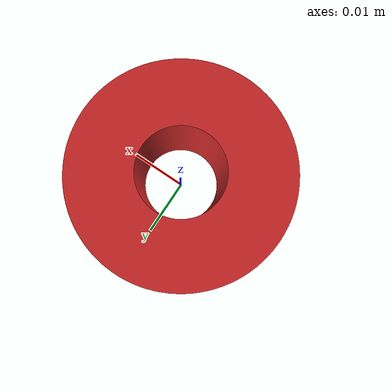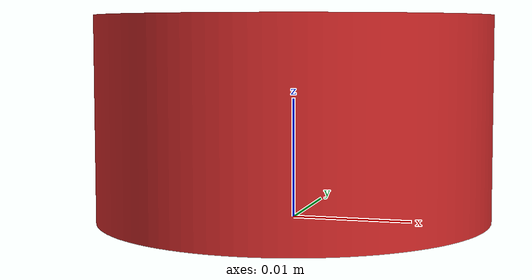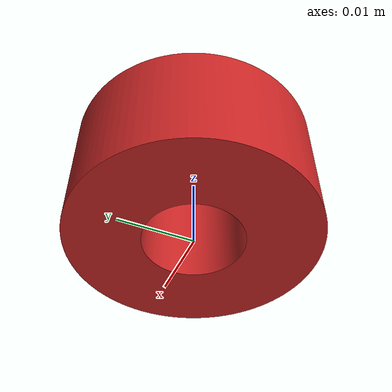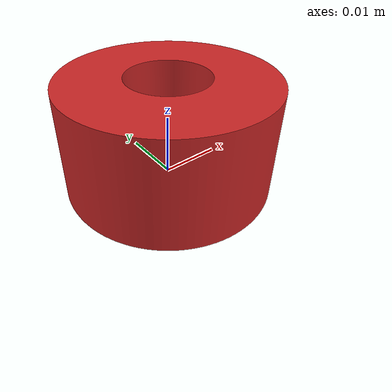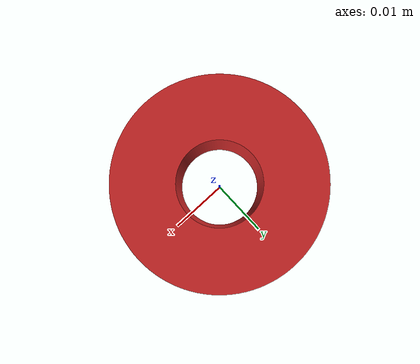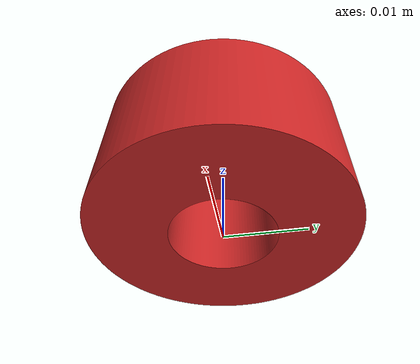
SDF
<sdf version='1.6'>
  <model name='hanoi_tower_d300'>
    <link name='token_d300_link'>
      <pose frame=''>0 0 0 0 -0 0</pose>
      <inertial>
        <pose frame=''>0 0 0.0085 0 -0 0</pose>
        <mass>0.45</mass>
        <inertia>
          <ixx>4.74e-05</ixx>
          <ixy>0</ixy>
          <ixz>0</ixz>
          <iyy>4.74e-05</iyy>
          <iyz>0</iyz>
          <izz>7.3125e-05</izz>
        </inertia>
      </inertial>
      <collision name='token_d300_link_fixed_joint_lump__collision_d300_b1_collision'>
        <pose frame=''>0 0 0.0085 0 -0 0</pose>
        <geometry>
          <mesh>
            <scale>1 1 1</scale>
            <uri>model://hanoi_tower_d300/meshes/token-300.stl</uri>
          </mesh>
        </geometry>
        <surface>
          <contact>
          <ode>
            <kp>1e15</kp>
            <kd>1e13</kd>
          </ode>
        </contact>
          <friction>
            <ode>
              <mu>10</mu>
              <mu2>10</mu2>
              <fdir1>1 1 1</fdir1>
            </ode>
          </friction>
          </surface>
      </collision>
      <visual name='token_d300_link_visual'>
        <pose frame=''>0 0 0.0085 0 -0 0</pose>
        <geometry>
          <mesh>
            <scale>1 1 1</scale>
            <uri>model://hanoi_tower_d300/meshes/token-300.dae</uri>
          </mesh>
        </geometry>
        <material>
          <script>
            <name>Gazebo/Red</name>
            <uri>file://media/materials/scripts/gazebo.material</uri>
          </script>
        </material>
      </visual>
      <gravity>1</gravity>
    </link>
    <plugin filename="libhanoi_tower_token_plugin.so" name="hanoi_tower_token_plugin">
      <mixamorig_RightHandIndex1_z>0.7</mixamorig_RightHandIndex1_z>
      <mixamorig_RightHandIndex2_z>0.8</mixamorig_RightHandIndex2_z>
      <mixamorig_RightHandIndex3_z>0.6</mixamorig_RightHandIndex3_z>
      <token_radius>0.030</token_radius>
    </plugin>
  </model>
</sdf>
